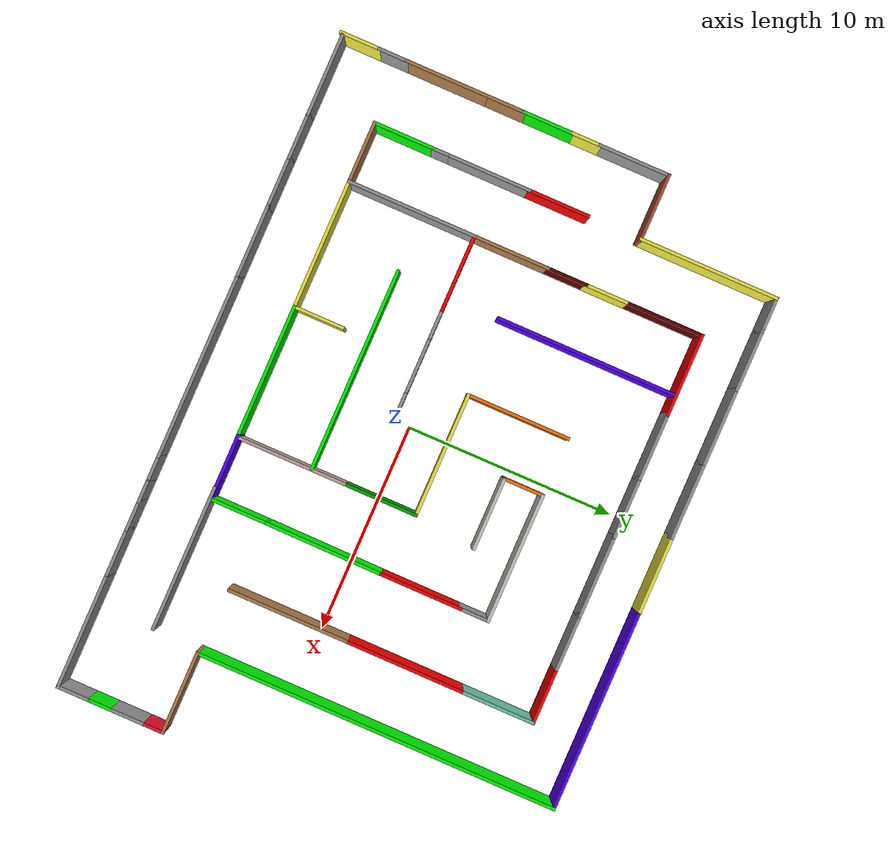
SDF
<?xml version='1.0'?>
<sdf version='1.6'>
  <model name='colourful_corridors'>
    <pose frame=''>0.960437 1.44085 0 0 -0 0</pose>
    <link name='Wall_10'>
      <collision name='Wall_10_Collision'>
        <geometry>
          <box>
            <size>6.25 0.15 2.5</size>
          </box>
        </geometry>
        <pose frame=''>0 0 1.25 0 -0 0</pose>
      </collision>
      <visual name='Wall_10_Visual'>
        <pose frame=''>0 0 1.25 0 -0 0</pose>
        <geometry>
          <box>
            <size>6.25 0.15 2.5</size>
          </box>
        </geometry>
        <material>
          <script>
            <uri>file://media/materials/scripts/gazebo.material</uri>
            <name>Gazebo/Grey</name>
          </script>
          <ambient>0 0 0 1</ambient>
        </material>
      </visual>
      <pose frame=''>-9.94493 -5.24748 0 0 -0 1.5708</pose>
    </link>
    <link name='Wall_100'>
      <collision name='Wall_100_Collision'>
        <geometry>
          <box>
            <size>1.5 0.15 2.5</size>
          </box>
        </geometry>
        <pose frame=''>0 0 1.25 0 -0 0</pose>
      </collision>
      <visual name='Wall_100_Visual'>
        <pose frame=''>0 0 1.25 0 -0 0</pose>
        <geometry>
          <box>
            <size>1.5 0.15 2.5</size>
          </box>
        </geometry>
        <material>
          <script>
            <uri>file://media/materials/scripts/gazebo.material</uri>
            <name>Gazebo/Grey</name>
          </script>
          <ambient>1 1 1 1</ambient>
        </material>
      </visual>
      <pose frame=''>5.53701 4.56402 0 0 0 -1.5708</pose>
    </link>
    <link name='Wall_101'>
      <collision name='Wall_101_Collision'>
        <geometry>
          <box>
            <size>4 0.15 2.5</size>
          </box>
        </geometry>
        <pose frame=''>0 0 1.25 0 -0 0</pose>
      </collision>
      <visual name='Wall_101_Visual'>
        <pose frame=''>0 0 1.25 0 -0 0</pose>
        <geometry>
          <box>
            <size>4 0.15 2.5</size>
          </box>
        </geometry>
        <material>
          <script>
            <uri>file://media/materials/scripts/gazebo.material</uri>
            <name>Gazebo/Grey</name>
          </script>
          <ambient>1 0 0 1</ambient>
        </material>
      </visual>
      <pose frame=''>5.53701 1.96402 0 0 0 -1.5708</pose>
    </link>
    <link name='Wall_102'>
      <collision name='Wall_102_Collision'>
        <geometry>
          <box>
            <size>5.75011 0.15 2.5</size>
          </box>
        </geometry>
        <pose frame=''>0 0 1.25 0 -0 0</pose>
      </collision>
      <visual name='Wall_102_Visual'>
        <pose frame=''>0 0 1.25 0 -0 0</pose>
        <geometry>
          <box>
            <size>5.75011 0.15 2.5</size>
          </box>
        </geometry>
        <material>
          <script>
            <uri>file://media/materials/scripts/gazebo.material</uri>
            <name>Gazebo/Grey</name>
          </script>
          <ambient>0 1 0 1</ambient>
        </material>
      </visual>
      <pose frame=''>5.51942 -2.76098 0 0 0 -1.57708</pose>
    </link>
    <link name='Wall_105'>
      <collision name='Wall_105_Collision'>
        <geometry>
          <box>
            <size>2.75 0.15 2.5</size>
          </box>
        </geometry>
        <pose frame=''>0 0 1.25 0 -0 0</pose>
      </collision>
      <visual name='Wall_105_Visual'>
        <pose frame=''>0 0 1.25 0 -0 0</pose>
        <geometry>
          <box>
            <size>2.75 0.15 2.5</size>
          </box>
        </geometry>
        <material>
          <script>
            <uri>file://media/materials/scripts/gazebo.material</uri>
            <name>Gazebo/Grey</name>
          </script>
          <ambient>0 1 0 1</ambient>
        </material>
      </visual>
      <pose frame=''>5.50183 -6.86098 0 0 0 -1.5708</pose>
    </link>
    <link name='Wall_107'>
      <collision name='Wall_107_Collision'>
        <geometry>
          <box>
            <size>3.5 0.15 2.5</size>
          </box>
        </geometry>
        <pose frame=''>0 0 1.25 0 -0 0</pose>
      </collision>
      <visual name='Wall_107_Visual'>
        <pose frame=''>0 0 1.25 0 -0 0</pose>
        <geometry>
          <box>
            <size>3.5 0.15 2.5</size>
          </box>
        </geometry>
        <material>
          <script>
            <uri>file://media/materials/scripts/gazebo.material</uri>
            <name>Gazebo/Grey</name>
          </script>
          <ambient>0.435294 0.796078 0.67451 1</ambient>
        </material>
      </visual>
      <pose frame=''>8.90507 7.22752 0 0 0 -1.5708</pose>
    </link>
    <link name='Wall_108'>
      <collision name='Wall_108_Collision'>
        <geometry>
          <box>
            <size>5.75 0.15 2.5</size>
          </box>
        </geometry>
        <pose frame=''>0 0 1.25 0 -0 0</pose>
      </collision>
      <visual name='Wall_108_Visual'>
        <pose frame=''>0 0 1.25 0 -0 0</pose>
        <geometry>
          <box>
            <size>5.75 0.15 2.5</size>
          </box>
        </geometry>
        <material>
          <script>
            <uri>file://media/materials/scripts/gazebo.material</uri>
            <name>Gazebo/Grey</name>
          </script>
          <ambient>1 0 0 1</ambient>
        </material>
      </visual>
      <pose frame=''>8.90507 2.75252 0 0 0 -1.5708</pose>
    </link>
    <link name='Wall_109'>
      <collision name='Wall_109_Collision'>
        <geometry>
          <box>
            <size>6 0.15 2.5</size>
          </box>
        </geometry>
        <pose frame=''>0 0 1.25 0 -0 0</pose>
      </collision>
      <visual name='Wall_109_Visual'>
        <pose frame=''>0 0 1.25 0 -0 0</pose>
        <geometry>
          <box>
            <size>6 0.15 2.5</size>
          </box>
        </geometry>
        <material>
          <script>
            <uri>file://media/materials/scripts/gazebo.material</uri>
            <name>Gazebo/Wood</name>
          </script>
          <ambient>1 1 1 1</ambient>
        </material>
      </visual>
      <pose frame=''>8.90507 -2.97248 0 0 0 -1.5708</pose>
    </link>
    <link name='Wall_111'>
      <collision name='Wall_111_Collision'>
        <geometry>
          <box>
            <size>3.75 0.15 2.5</size>
          </box>
        </geometry>
        <pose frame=''>0 0 1.25 0 -0 0</pose>
      </collision>
      <visual name='Wall_111_Visual'>
        <pose frame=''>0 0 1.25 0 -0 0</pose>
        <geometry>
          <box>
            <size>3.75 0.15 2.5</size>
          </box>
        </geometry>
        <material>
          <script>
            <uri>file://media/materials/scripts/gazebo.material</uri>
            <name>Gazebo/Grey</name>
          </script>
          <ambient>1 0 0 1</ambient>
        </material>
      </visual>
      <pose frame=''>-8.14493 -2.19748 0 0 -0 0</pose>
    </link>
    <link name='Wall_112'>
      <collision name='Wall_112_Collision'>
        <geometry>
          <box>
            <size>1.5 0.15 2.5</size>
          </box>
        </geometry>
        <pose frame=''>0 0 1.25 0 -0 0</pose>
      </collision>
      <visual name='Wall_112_Visual'>
        <pose frame=''>0 0 1.25 0 -0 0</pose>
        <geometry>
          <box>
            <size>1.5 0.15 2.5</size>
          </box>
        </geometry>
        <material>
          <script>
            <uri>file://media/materials/scripts/gazebo.material</uri>
            <name>Gazebo/Grey</name>
          </script>
          <ambient>1 1 1 1</ambient>
        </material>
      </visual>
      <pose frame=''>-5.66993 -2.19748 0 0 -0 0</pose>
    </link>
    <link name='Wall_113'>
      <collision name='Wall_113_Collision'>
        <geometry>
          <box>
            <size>2.75 0.15 2.5</size>
          </box>
        </geometry>
        <pose frame=''>0 0 1.25 0 -0 0</pose>
      </collision>
      <visual name='Wall_113_Visual'>
        <pose frame=''>0 0 1.25 0 -0 0</pose>
        <geometry>
          <box>
            <size>2.75 0.15 2.5</size>
          </box>
        </geometry>
        <material>
          <script>
            <uri>file://media/materials/scripts/gazebo.material</uri>
            <name>Gazebo/Grey</name>
          </script>
          <ambient>1 1 1 1</ambient>
        </material>
      </visual>
      <pose frame=''>-3.69493 -2.19748 0 0 -0 0</pose>
    </link>
    <link name='Wall_114'>
      <collision name='Wall_114_Collision'>
        <geometry>
          <box>
            <size>1.5 0.15 2.5</size>
          </box>
        </geometry>
        <pose frame=''>0 0 1.25 0 -0 0</pose>
      </collision>
      <visual name='Wall_114_Visual'>
        <pose frame=''>0 0 1.25 0 -0 0</pose>
        <geometry>
          <box>
            <size>1.5 0.15 2.5</size>
          </box>
        </geometry>
        <material>
          <script>
            <uri>file://media/materials/scripts/gazebo.material</uri>
            <name>Gazebo/Grey</name>
          </script>
          <ambient>1 1 1 1</ambient>
        </material>
      </visual>
      <pose frame=''>-1.71993 -2.19748 0 0 -0 0</pose>
    </link>
    <link name='Wall_116'>
      <collision name='Wall_116_Collision'>
        <geometry>
          <box>
            <size>4 0.15 2.5</size>
          </box>
        </geometry>
        <pose frame=''>0 0 1.25 0 -0 0</pose>
      </collision>
      <visual name='Wall_116_Visual'>
        <pose frame=''>0 0 1.25 0 -0 0</pose>
        <geometry>
          <box>
            <size>4 0.15 2.5</size>
          </box>
        </geometry>
        <material>
          <script>
            <uri>file://media/materials/scripts/gazebo.material</uri>
            <name>Gazebo/Grey</name>
          </script>
          <ambient>1 0 0 1</ambient>
        </material>
      </visual>
      <pose frame=''>-8.01993 8.90252 0 0 -0 0</pose>
    </link>
    <link name='Wall_117'>
      <collision name='Wall_117_Collision'>
        <geometry>
          <box>
            <size>3.25 0.15 2.5</size>
          </box>
        </geometry>
        <pose frame=''>0 0 1.25 0 -0 0</pose>
      </collision>
      <visual name='Wall_117_Visual'>
        <pose frame=''>0 0 1.25 0 -0 0</pose>
        <geometry>
          <box>
            <size>3.25 0.15 2.5</size>
          </box>
        </geometry>
        <material>
          <script>
            <uri>file://media/materials/scripts/gazebo.material</uri>
            <name>Gazebo/Grey</name>
          </script>
          <ambient>1 1 1 1</ambient>
        </material>
      </visual>
      <pose frame=''>-4.54493 8.90252 0 0 -0 0</pose>
    </link>
    <link name='Wall_118'>
      <collision name='Wall_118_Collision'>
        <geometry>
          <box>
            <size>3 0.15 2.5</size>
          </box>
        </geometry>
        <pose frame=''>0 0 1.25 0 -0 0</pose>
      </collision>
      <visual name='Wall_118_Visual'>
        <pose frame=''>0 0 1.25 0 -0 0</pose>
        <geometry>
          <box>
            <size>3 0.15 2.5</size>
          </box>
        </geometry>
        <material>
          <script>
            <uri>file://media/materials/scripts/gazebo.material</uri>
            <name>Gazebo/Grey</name>
          </script>
          <ambient>1 1 1 1</ambient>
        </material>
      </visual>
      <pose frame=''>-1.56993 8.90252 0 0 -0 0</pose>
    </link>
    <link name='Wall_119'>
      <collision name='Wall_119_Collision'>
        <geometry>
          <box>
            <size>4 0.15 2.5</size>
          </box>
        </geometry>
        <pose frame=''>0 0 1.25 0 -0 0</pose>
      </collision>
      <visual name='Wall_119_Visual'>
        <pose frame=''>0 0 1.25 0 -0 0</pose>
        <geometry>
          <box>
            <size>4 0.15 2.5</size>
          </box>
        </geometry>
        <material>
          <script>
            <uri>file://media/materials/scripts/gazebo.material</uri>
            <name>Gazebo/Grey</name>
          </script>
          <ambient>1 1 1 1</ambient>
        </material>
      </visual>
      <pose frame=''>1.78007 8.90252 0 0 -0 0</pose>
    </link>
    <link name='Wall_120'>
      <collision name='Wall_120_Collision'>
        <geometry>
          <box>
            <size>2.75 0.15 2.5</size>
          </box>
        </geometry>
        <pose frame=''>0 0 1.25 0 -0 0</pose>
      </collision>
      <visual name='Wall_120_Visual'>
        <pose frame=''>0 0 1.25 0 -0 0</pose>
        <geometry>
          <box>
            <size>2.75 0.15 2.5</size>
          </box>
        </geometry>
        <material>
          <script>
            <uri>file://media/materials/scripts/gazebo.material</uri>
            <name>Gazebo/Grey</name>
          </script>
          <ambient>1 1 1 1</ambient>
        </material>
      </visual>
      <pose frame=''>5.00507 8.90252 0 0 -0 0</pose>
    </link>
    <link name='Wall_121'>
      <collision name='Wall_121_Collision'>
        <geometry>
          <box>
            <size>2.75 0.15 2.5</size>
          </box>
        </geometry>
        <pose frame=''>0 0 1.25 0 -0 0</pose>
      </collision>
      <visual name='Wall_121_Visual'>
        <pose frame=''>0 0 1.25 0 -0 0</pose>
        <geometry>
          <box>
            <size>2.75 0.15 2.5</size>
          </box>
        </geometry>
        <material>
          <script>
            <uri>file://media/materials/scripts/gazebo.material</uri>
            <name>Gazebo/Grey</name>
          </script>
          <ambient>1 0 0 1</ambient>
        </material>
      </visual>
      <pose frame=''>7.60507 8.90252 0 0 -0 0</pose>
    </link>
    <link name='Wall_123'>
      <collision name='Wall_123_Collision'>
        <geometry>
          <box>
            <size>3.75 0.15 2.5</size>
          </box>
        </geometry>
        <pose frame=''>0 0 1.25 0 -0 0</pose>
      </collision>
      <visual name='Wall_123_Visual'>
        <pose frame=''>0 0 1.25 0 -0 0</pose>
        <geometry>
          <box>
            <size>3.75 0.15 2.5</size>
          </box>
        </geometry>
        <material>
          <script>
            <uri>file://media/materials/scripts/gazebo.material</uri>
            <name>Gazebo/Wood</name>
          </script>
          <ambient>1 1 1 1</ambient>
        </material>
      </visual>
      <pose frame=''>-9.94493 -0.39748 0 0 -0 1.5708</pose>
    </link>
    <link name='Wall_124'>
      <collision name='Wall_124_Collision'>
        <geometry>
          <box>
            <size>2 0.15 2.5</size>
          </box>
        </geometry>
        <pose frame=''>0 0 1.25 0 -0 0</pose>
      </collision>
      <visual name='Wall_124_Visual'>
        <pose frame=''>0 0 1.25 0 -0 0</pose>
        <geometry>
          <box>
            <size>2 0.15 2.5</size>
          </box>
        </geometry>
        <material>
          <script>
            <uri>file://media/materials/scripts/gazebo.material</uri>
            <name>Gazebo/Grey</name>
          </script>
          <ambient>0.333333 0 0 1</ambient>
        </material>
      </visual>
      <pose frame=''>-9.94493 2.32752 0 0 -0 1.5708</pose>
    </link>
    <link name='Wall_125'>
      <collision name='Wall_125_Collision'>
        <geometry>
          <box>
            <size>2.25 0.15 2.5</size>
          </box>
        </geometry>
        <pose frame=''>0 0 1.25 0 -0 0</pose>
      </collision>
      <visual name='Wall_125_Visual'>
        <pose frame=''>0 0 1.25 0 -0 0</pose>
        <geometry>
          <box>
            <size>2.25 0.15 2.5</size>
          </box>
        </geometry>
        <material>
          <script>
            <uri>file://media/materials/scripts/gazebo.material</uri>
            <name>Gazebo/Grey</name>
          </script>
          <ambient>0.960784 0.937255 0.25098 1</ambient>
        </material>
      </visual>
      <pose frame=''>-9.94493 4.30252 0 0 -0 1.5708</pose>
    </link>
    <link name='Wall_126'>
      <collision name='Wall_126_Collision'>
        <geometry>
          <box>
            <size>3.7 0.15 2.5</size>
          </box>
        </geometry>
        <pose frame=''>0 0 1.25 0 -0 0</pose>
      </collision>
      <visual name='Wall_126_Visual'>
        <pose frame=''>0 0 1.25 0 -0 0</pose>
        <geometry>
          <box>
            <size>3.7 0.15 2.5</size>
          </box>
        </geometry>
        <material>
          <script>
            <uri>file://media/materials/scripts/gazebo.material</uri>
            <name>Gazebo/Grey</name>
          </script>
          <ambient>0.333333 0 0 1</ambient>
        </material>
      </visual>
      <pose frame=''>-9.94493 7.12752 0 0 -0 1.5708</pose>
    </link>
    <link name='Wall_136'>
      <collision name='Wall_136_Collision'>
        <geometry>
          <box>
            <size>7 0.15 2.5</size>
          </box>
        </geometry>
        <pose frame=''>0 0 1.25 0 -0 0</pose>
      </collision>
      <visual name='Wall_136_Visual'>
        <pose frame=''>0 0 1.25 0 -0 0</pose>
        <geometry>
          <box>
            <size>7 0.15 2.5</size>
          </box>
        </geometry>
        <material>
          <script>
            <uri>file://media/materials/scripts/gazebo.material</uri>
            <name>Gazebo/Grey</name>
          </script>
          <ambient>0 0 0 1</ambient>
        </material>
      </visual>
      <pose frame=''>8.40702 -8.3203 0 0 -0 0</pose>
    </link>
    <link name='Wall_19'>
      <collision name='Wall_19_Collision'>
        <geometry>
          <box>
            <size>3.5 0.15 2.5</size>
          </box>
        </geometry>
        <pose frame=''>0 0 1.25 0 -0 0</pose>
      </collision>
      <visual name='Wall_19_Visual'>
        <pose frame=''>0 0 1.25 0 -0 0</pose>
        <geometry>
          <box>
            <size>3.5 0.15 2.5</size>
          </box>
        </geometry>
        <material>
          <script>
            <uri>file://media/materials/scripts/gazebo.material</uri>
            <name>Gazebo/Grey</name>
          </script>
          <ambient>0 0.666667 0 1</ambient>
        </material>
      </visual>
      <pose frame=''>2.50507 -1.27248 0 0 -0 1.5708</pose>
    </link>
    <link name='Wall_20'>
      <collision name='Wall_20_Collision'>
        <geometry>
          <box>
            <size>6 0.15 2.5</size>
          </box>
        </geometry>
        <pose frame=''>0 0 1.25 0 -0 0</pose>
      </collision>
      <visual name='Wall_20_Visual'>
        <pose frame=''>0 0 1.25 0 -0 0</pose>
        <geometry>
          <box>
            <size>6 0.15 2.5</size>
          </box>
        </geometry>
        <material>
          <script>
            <uri>file://media/materials/scripts/gazebo.material</uri>
            <name>Gazebo/Grey</name>
          </script>
          <ambient>0.960784 0.937255 0.25098 1</ambient>
        </material>
      </visual>
      <pose frame=''>-0.419931 0.40252 0 0 -0 3.14159</pose>
    </link>
    <link name='Wall_21'>
      <collision name='Wall_21_Collision'>
        <geometry>
          <box>
            <size>5 0.15 2.5</size>
          </box>
        </geometry>
        <pose frame=''>0 0 1.25 0 -0 0</pose>
      </collision>
      <visual name='Wall_21_Visual'>
        <pose frame=''>0 0 1.25 0 -0 0</pose>
        <geometry>
          <box>
            <size>5 0.15 2.5</size>
          </box>
        </geometry>
        <material>
          <script>
            <uri>file://media/materials/scripts/gazebo.material</uri>
            <name>Gazebo/Grey</name>
          </script>
          <ambient>0.996078 0.47451 0.0196078 1</ambient>
        </material>
      </visual>
      <pose frame=''>-3.34493 2.82752 0 0 -0 1.5708</pose>
    </link>
    <link name='Wall_23'>
      <collision name='Wall_23_Collision'>
        <geometry>
          <box>
            <size>9.75 0.15 2.5</size>
          </box>
        </geometry>
        <pose frame=''>0 0 1.25 0 -0 0</pose>
      </collision>
      <visual name='Wall_23_Visual'>
        <pose frame=''>0 0 1.25 0 -0 0</pose>
        <geometry>
          <box>
            <size>9.75 0.15 2.5</size>
          </box>
        </geometry>
        <material>
          <script>
            <uri>file://media/materials/scripts/gazebo.material</uri>
            <name>Gazebo/Grey</name>
          </script>
          <ambient>0 1 0 1</ambient>
        </material>
      </visual>
      <pose frame=''>-2.34964 -4.69376 0 0 -0 3.14159</pose>
    </link>
    <link name='Wall_25'>
      <collision name='Wall_25_Collision'>
        <geometry>
          <box>
            <size>8.75 0.15 2.5</size>
          </box>
        </geometry>
        <pose frame=''>0 0 1.25 0 -0 0</pose>
      </collision>
      <visual name='Wall_25_Visual'>
        <pose frame=''>0 0 1.25 0 -0 0</pose>
        <geometry>
          <box>
            <size>8.75 0.15 2.5</size>
          </box>
        </geometry>
        <material>
          <script>
            <uri>file://media/materials/scripts/gazebo.material</uri>
            <name>Gazebo/Grey</name>
          </script>
          <ambient>0.333333 0 1 1</ambient>
        </material>
      </visual>
      <pose frame=''>-7.02348 4.57178 0 0 0 -1.5708</pose>
    </link>
    <link name='Wall_29'>
      <collision name='Wall_29_Collision'>
        <geometry>
          <box>
            <size>6.25 0.15 2.5</size>
          </box>
        </geometry>
        <pose frame=''>0 0 1.25 0 -0 0</pose>
      </collision>
      <visual name='Wall_29_Visual'>
        <pose frame=''>0 0 1.25 0 -0 0</pose>
        <geometry>
          <box>
            <size>6.25 0.15 2.5</size>
          </box>
        </geometry>
        <material>
          <script>
            <uri>file://media/materials/scripts/gazebo.material</uri>
            <name>Gazebo/CeilingTiled</name>
          </script>
          <ambient>0.996078 0.47451 0.0196078 1</ambient>
        </material>
      </visual>
      <pose frame=''>2.48701 5.23902 0 0 -0 0</pose>
    </link>
    <link name='Wall_31'>
      <collision name='Wall_31_Collision'>
        <geometry>
          <box>
            <size>3.14446 0.15 2.5</size>
          </box>
        </geometry>
        <pose frame=''>0 0 1.25 0 -0 0</pose>
      </collision>
      <visual name='Wall_31_Visual'>
        <pose frame=''>0 0 1.25 0 -0 0</pose>
        <geometry>
          <box>
            <size>3.14446 0.15 2.5</size>
          </box>
        </geometry>
        <material>
          <script>
            <uri>file://media/materials/scripts/gazebo.material</uri>
            <name>Gazebo/Grey</name>
          </script>
          <ambient>0.333333 0 1 1</ambient>
        </material>
      </visual>
      <pose frame=''>3.93424 -8.29062 0 0 -0 3.14159</pose>
    </link>
    <link name='Wall_37'>
      <collision name='Wall_37_Collision'>
        <geometry>
          <box>
            <size>3.5 0.15 2.5</size>
          </box>
        </geometry>
        <pose frame=''>0 0 1.25 0 -0 0</pose>
      </collision>
      <visual name='Wall_37_Visual'>
        <pose frame=''>0 0 1.25 0 -0 0</pose>
        <geometry>
          <box>
            <size>3.5 0.15 2.5</size>
          </box>
        </geometry>
        <material>
          <script>
            <uri>file://media/materials/scripts/gazebo.material</uri>
            <name>Gazebo/CeilingTiled</name>
          </script>
          <ambient>1 1 1 1</ambient>
        </material>
      </visual>
      <pose frame=''>1.16107 3.36785 0 0 -0 0</pose>
    </link>
    <link name='Wall_4'>
      <collision name='Wall_4_Collision'>
        <geometry>
          <box>
            <size>5.5 0.15 2.5</size>
          </box>
        </geometry>
        <pose frame=''>0 0 1.25 0 -0 0</pose>
      </collision>
      <visual name='Wall_4_Visual'>
        <pose frame=''>0 0 1.25 0 -0 0</pose>
        <geometry>
          <box>
            <size>5.5 0.15 2.5</size>
          </box>
        </geometry>
        <material>
          <script>
            <uri>file://media/materials/scripts/gazebo.material</uri>
            <name>Gazebo/Grey</name>
          </script>
          <ambient>0.760784 0.662745 0.627451 1</ambient>
        </material>
      </visual>
      <pose frame=''>2.50507 -5.62248 0 0 0 -1.5708</pose>
    </link>
    <link name='Wall_43'>
      <collision name='Wall_43_Collision'>
        <geometry>
          <box>
            <size>2 0.15 2.5</size>
          </box>
        </geometry>
        <pose frame=''>0 0 1.25 0 -0 0</pose>
      </collision>
      <visual name='Wall_43_Visual'>
        <pose frame=''>0 0 1.25 0 -0 0</pose>
        <geometry>
          <box>
            <size>2 0.15 2.5</size>
          </box>
        </geometry>
        <material>
          <script>
            <uri>file://media/materials/scripts/gazebo.material</uri>
            <name>Gazebo/Grey</name>
          </script>
          <ambient>0.996078 0.47451 0.0196078 1</ambient>
        </material>
      </visual>
      <pose frame=''>-0.562989 4.31402 0 0 0 -1.5708</pose>
    </link>
    <link name='Wall_48'>
      <collision name='Wall_48_Collision'>
        <geometry>
          <box>
            <size>4 0.15 2.5</size>
          </box>
        </geometry>
        <pose frame=''>0 0 1.25 0 -0 0</pose>
      </collision>
      <visual name='Wall_48_Visual'>
        <pose frame=''>0 0 1.25 0 -0 0</pose>
        <geometry>
          <box>
            <size>4 0.15 2.5</size>
          </box>
        </geometry>
        <material>
          <script>
            <uri>file://media/materials/scripts/gazebo.material</uri>
            <name>Gazebo/Wood</name>
          </script>
          <ambient>1 1 1 1</ambient>
        </material>
      </visual>
      <pose frame=''>13.975 -6.075 0 0 -0 3.14159</pose>
    </link>
    <link name='Wall_49'>
      <collision name='Wall_49_Collision'>
        <geometry>
          <box>
            <size>17.5 0.15 2.5</size>
          </box>
        </geometry>
        <pose frame=''>0 0 1.25 0 -0 0</pose>
      </collision>
      <visual name='Wall_49_Visual'>
        <pose frame=''>0 0 1.25 0 -0 0</pose>
        <geometry>
          <box>
            <size>17.5 0.15 2.5</size>
          </box>
        </geometry>
        <material>
          <script>
            <uri>file://media/materials/scripts/gazebo.material</uri>
            <name>Gazebo/Grey</name>
          </script>
          <ambient>0 1 0 1</ambient>
        </material>
      </visual>
      <pose frame=''>12.05 2.6 0 0 -0 1.5708</pose>
    </link>
    <link name='Wall_51'>
      <collision name='Wall_51_Collision'>
        <geometry>
          <box>
            <size>6.75 0.15 2.5</size>
          </box>
        </geometry>
        <pose frame=''>0 0 1.25 0 -0 0</pose>
      </collision>
      <visual name='Wall_51_Visual'>
        <pose frame=''>0 0 1.25 0 -0 0</pose>
        <geometry>
          <box>
            <size>6.75 0.15 2.5</size>
          </box>
        </geometry>
        <material>
          <script>
            <uri>file://media/materials/scripts/gazebo.material</uri>
            <name>Gazebo/Grey</name>
          </script>
          <ambient>0.960784 0.937255 0.25098 1</ambient>
        </material>
      </visual>
      <pose frame=''>-12.8 7.975 0 0 0 -1.5708</pose>
    </link>
    <link name='Wall_52'>
      <collision name='Wall_52_Collision'>
        <geometry>
          <box>
            <size>3.25 0.15 2.5</size>
          </box>
        </geometry>
        <pose frame=''>0 0 1.25 0 -0 0</pose>
      </collision>
      <visual name='Wall_52_Visual'>
        <pose frame=''>0 0 1.25 0 -0 0</pose>
        <geometry>
          <box>
            <size>3.25 0.15 2.5</size>
          </box>
        </geometry>
        <material>
          <script>
            <uri>file://media/materials/scripts/gazebo.material</uri>
            <name>Gazebo/Bricks</name>
          </script>
          <ambient>1 0 0 1</ambient>
        </material>
      </visual>
      <pose frame=''>-14.35 4.675 0 0 -0 3.14159</pose>
    </link>
    <link name='Wall_56'>
      <collision name='Wall_56_Collision'>
        <geometry>
          <box>
            <size>4 0.15 2.5</size>
          </box>
        </geometry>
        <pose frame=''>0 0 1.25 0 -0 0</pose>
      </collision>
      <visual name='Wall_56_Visual'>
        <pose frame=''>0 0 1.25 0 -0 0</pose>
        <geometry>
          <box>
            <size>4 0.15 2.5</size>
          </box>
        </geometry>
        <material>
          <script>
            <uri>file://media/materials/scripts/gazebo.material</uri>
            <name>Gazebo/Grey</name>
          </script>
          <ambient>1 1 1 1</ambient>
        </material>
      </visual>
      <pose frame=''>-13.875 -11.175 0 0 -0 3.14159</pose>
    </link>
    <link name='Wall_6'>
      <collision name='Wall_6_Collision'>
        <geometry>
          <box>
            <size>6.5 0.15 2.5</size>
          </box>
        </geometry>
        <pose frame=''>0 0 1.25 0 -0 0</pose>
      </collision>
      <visual name='Wall_6_Visual'>
        <pose frame=''>0 0 1.25 0 -0 0</pose>
        <geometry>
          <box>
            <size>6.5 0.15 2.5</size>
          </box>
        </geometry>
        <material>
          <script>
            <uri>file://media/materials/scripts/gazebo.material</uri>
            <name>Gazebo/Grey</name>
          </script>
          <ambient>0 1 0 1</ambient>
        </material>
      </visual>
      <pose frame=''>-0.669931 -8.29748 0 0 -0 3.14159</pose>
    </link>
    <link name='Wall_60'>
      <collision name='Wall_60_Collision'>
        <geometry>
          <box>
            <size>3 0.15 2.5</size>
          </box>
        </geometry>
        <pose frame=''>0 0 1.25 0 -0 0</pose>
      </collision>
      <visual name='Wall_60_Visual'>
        <pose frame=''>0 0 1.25 0 -0 0</pose>
        <geometry>
          <box>
            <size>3 0.15 2.5</size>
          </box>
        </geometry>
        <material>
          <script>
            <uri>file://media/materials/scripts/gazebo.material</uri>
            <name>Gazebo/Wood</name>
          </script>
          <ambient>1 1 1 1</ambient>
        </material>
      </visual>
      <pose frame=''>-11.3699 -8.29748 0 0 -0 3.14159</pose>
    </link>
    <link name='Wall_63'>
      <collision name='Wall_63_Collision'>
        <geometry>
          <box>
            <size>2.25 0.15 2.5</size>
          </box>
        </geometry>
        <pose frame=''>0 0 1.25 0 -0 0</pose>
      </collision>
      <visual name='Wall_63_Visual'>
        <pose frame=''>0 0 1.25 0 -0 0</pose>
        <geometry>
          <box>
            <size>2.25 0.15 2.5</size>
          </box>
        </geometry>
        <material>
          <script>
            <uri>file://media/materials/scripts/gazebo.material</uri>
            <name>Gazebo/Grey</name>
          </script>
          <ambient>1 1 1 1</ambient>
        </material>
      </visual>
      <pose frame=''>-10.9 -11.175 0 0 -0 0</pose>
    </link>
    <link name='Wall_64'>
      <collision name='Wall_64_Collision'>
        <geometry>
          <box>
            <size>2.5 0.15 2.5</size>
          </box>
        </geometry>
        <pose frame=''>0 0 1.25 0 -0 0</pose>
      </collision>
      <visual name='Wall_64_Visual'>
        <pose frame=''>0 0 1.25 0 -0 0</pose>
        <geometry>
          <box>
            <size>2.5 0.15 2.5</size>
          </box>
        </geometry>
        <material>
          <script>
            <uri>file://media/materials/scripts/gazebo.material</uri>
            <name>Gazebo/Grey</name>
          </script>
          <ambient>1 1 1 1</ambient>
        </material>
      </visual>
      <pose frame=''>-8.675 -11.175 0 0 -0 0</pose>
    </link>
    <link name='Wall_65'>
      <collision name='Wall_65_Collision'>
        <geometry>
          <box>
            <size>3.5 0.15 2.5</size>
          </box>
        </geometry>
        <pose frame=''>0 0 1.25 0 -0 0</pose>
      </collision>
      <visual name='Wall_65_Visual'>
        <pose frame=''>0 0 1.25 0 -0 0</pose>
        <geometry>
          <box>
            <size>3.5 0.15 2.5</size>
          </box>
        </geometry>
        <material>
          <script>
            <uri>file://media/materials/scripts/gazebo.material</uri>
            <name>Gazebo/Grey</name>
          </script>
          <ambient>1 1 1 1</ambient>
        </material>
      </visual>
      <pose frame=''>-5.825 -11.175 0 0 -0 0</pose>
    </link>
    <link name='Wall_66'>
      <collision name='Wall_66_Collision'>
        <geometry>
          <box>
            <size>9 0.15 2.5</size>
          </box>
        </geometry>
        <pose frame=''>0 0 1.25 0 -0 0</pose>
      </collision>
      <visual name='Wall_66_Visual'>
        <pose frame=''>0 0 1.25 0 -0 0</pose>
        <geometry>
          <box>
            <size>9 0.15 2.5</size>
          </box>
        </geometry>
        <material>
          <script>
            <uri>file://media/materials/scripts/gazebo.material</uri>
            <name>Gazebo/Grey</name>
          </script>
          <ambient>1 1 1 1</ambient>
        </material>
      </visual>
      <pose frame=''>0.274999 -11.175 0 0 -0 0</pose>
    </link>
    <link name='Wall_67'>
      <collision name='Wall_67_Collision'>
        <geometry>
          <box>
            <size>1.25 0.15 2.5</size>
          </box>
        </geometry>
        <pose frame=''>0 0 1.25 0 -0 0</pose>
      </collision>
      <visual name='Wall_67_Visual'>
        <pose frame=''>0 0 1.25 0 -0 0</pose>
        <geometry>
          <box>
            <size>1.25 0.15 2.5</size>
          </box>
        </geometry>
        <material>
          <script>
            <uri>file://media/materials/scripts/gazebo.material</uri>
            <name>Gazebo/Grey</name>
          </script>
          <ambient>1 1 1 1</ambient>
        </material>
      </visual>
      <pose frame=''>5.25 -11.175 0 0 -0 0</pose>
    </link>
    <link name='Wall_68'>
      <collision name='Wall_68_Collision'>
        <geometry>
          <box>
            <size>1.25 0.15 2.5</size>
          </box>
        </geometry>
        <pose frame=''>0 0 1.25 0 -0 0</pose>
      </collision>
      <visual name='Wall_68_Visual'>
        <pose frame=''>0 0 1.25 0 -0 0</pose>
        <geometry>
          <box>
            <size>1.25 0.15 2.5</size>
          </box>
        </geometry>
        <material>
          <script>
            <uri>file://media/materials/scripts/gazebo.material</uri>
            <name>Gazebo/Grey</name>
          </script>
          <ambient>1 1 1 1</ambient>
        </material>
      </visual>
      <pose frame=''>6.35 -11.175 0 0 -0 0</pose>
    </link>
    <link name='Wall_69'>
      <collision name='Wall_69_Collision'>
        <geometry>
          <box>
            <size>1.5 0.15 2.5</size>
          </box>
        </geometry>
        <pose frame=''>0 0 1.25 0 -0 0</pose>
      </collision>
      <visual name='Wall_69_Visual'>
        <pose frame=''>0 0 1.25 0 -0 0</pose>
        <geometry>
          <box>
            <size>1.5 0.15 2.5</size>
          </box>
        </geometry>
        <material>
          <script>
            <uri>file://media/materials/scripts/gazebo.material</uri>
            <name>Gazebo/Grey</name>
          </script>
          <ambient>1 1 1 1</ambient>
        </material>
      </visual>
      <pose frame=''>7.575 -11.175 0 0 -0 0</pose>
    </link>
    <link name='Wall_7'>
      <collision name='Wall_7_Collision'>
        <geometry>
          <box>
            <size>2.5 0.15 2.5</size>
          </box>
        </geometry>
        <pose frame=''>0 0 1.25 0 -0 0</pose>
      </collision>
      <visual name='Wall_7_Visual'>
        <pose frame=''>0 0 1.25 0 -0 0</pose>
        <geometry>
          <box>
            <size>2.5 0.15 2.5</size>
          </box>
        </geometry>
        <material>
          <script>
            <uri>file://media/materials/scripts/gazebo.material</uri>
            <name>Gazebo/Grey</name>
          </script>
          <ambient>0.960784 0.937255 0.25098 1</ambient>
        </material>
      </visual>
      <pose frame=''>-3.84493 -7.12248 0 0 -0 1.5708</pose>
    </link>
    <link name='Wall_70'>
      <collision name='Wall_70_Collision'>
        <geometry>
          <box>
            <size>2.5 0.15 2.5</size>
          </box>
        </geometry>
        <pose frame=''>0 0 1.25 0 -0 0</pose>
      </collision>
      <visual name='Wall_70_Visual'>
        <pose frame=''>0 0 1.25 0 -0 0</pose>
        <geometry>
          <box>
            <size>2.5 0.15 2.5</size>
          </box>
        </geometry>
        <material>
          <script>
            <uri>file://media/materials/scripts/gazebo.material</uri>
            <name>Gazebo/Grey</name>
          </script>
          <ambient>1 1 1 1</ambient>
        </material>
      </visual>
      <pose frame=''>9.425 -11.175 0 0 -0 0</pose>
    </link>
    <link name='Wall_71'>
      <collision name='Wall_71_Collision'>
        <geometry>
          <box>
            <size>5.45 0.15 2.5</size>
          </box>
        </geometry>
        <pose frame=''>0 0 1.25 0 -0 0</pose>
      </collision>
      <visual name='Wall_71_Visual'>
        <pose frame=''>0 0 1.25 0 -0 0</pose>
        <geometry>
          <box>
            <size>5.45 0.15 2.5</size>
          </box>
        </geometry>
        <material>
          <script>
            <uri>file://media/materials/scripts/gazebo.material</uri>
            <name>Gazebo/Grey</name>
          </script>
          <ambient>1 1 1 1</ambient>
        </material>
      </visual>
      <pose frame=''>13.25 -11.175 0 0 -0 0</pose>
    </link>
    <link name='Wall_73'>
      <collision name='Wall_73_Collision'>
        <geometry>
          <box>
            <size>1 0.15 2.5</size>
          </box>
        </geometry>
        <pose frame=''>0 0 1.25 0 -0 0</pose>
      </collision>
      <visual name='Wall_73_Visual'>
        <pose frame=''>0 0 1.25 0 -0 0</pose>
        <geometry>
          <box>
            <size>1 0.15 2.5</size>
          </box>
        </geometry>
        <material>
          <script>
            <uri>file://media/materials/scripts/gazebo.material</uri>
            <name>Gazebo/Grey</name>
          </script>
          <ambient>0.960784 0.054902 0.192157 1</ambient>
        </material>
      </visual>
      <pose frame=''>15.9 -6.5 0 0 0 -1.5708</pose>
    </link>
    <link name='Wall_74'>
      <collision name='Wall_74_Collision'>
        <geometry>
          <box>
            <size>1.75 0.15 2.5</size>
          </box>
        </geometry>
        <pose frame=''>0 0 1.25 0 -0 0</pose>
      </collision>
      <visual name='Wall_74_Visual'>
        <pose frame=''>0 0 1.25 0 -0 0</pose>
        <geometry>
          <box>
            <size>1.75 0.15 2.5</size>
          </box>
        </geometry>
        <material>
          <script>
            <uri>file://media/materials/scripts/gazebo.material</uri>
            <name>Gazebo/Grey</name>
          </script>
          <ambient>0 0 0 1</ambient>
        </material>
      </visual>
      <pose frame=''>15.9 -7.725 0 0 0 -1.5708</pose>
    </link>
    <link name='Wall_77'>
      <collision name='Wall_77_Collision'>
        <geometry>
          <box>
            <size>1.25 0.15 2.5</size>
          </box>
        </geometry>
        <pose frame=''>0 0 1.25 0 -0 0</pose>
      </collision>
      <visual name='Wall_77_Visual'>
        <pose frame=''>0 0 1.25 0 -0 0</pose>
        <geometry>
          <box>
            <size>1.25 0.15 2.5</size>
          </box>
        </geometry>
        <material>
          <script>
            <uri>file://media/materials/scripts/gazebo.material</uri>
            <name>Gazebo/Grey</name>
          </script>
          <ambient>0 1 0 1</ambient>
        </material>
      </visual>
      <pose frame=''>15.9 -9.075 0 0 0 -1.5708</pose>
    </link>
    <link name='Wall_78'>
      <collision name='Wall_78_Collision'>
        <geometry>
          <box>
            <size>1.7 0.15 2.5</size>
          </box>
        </geometry>
        <pose frame=''>0 0 1.25 0 -0 0</pose>
      </collision>
      <visual name='Wall_78_Visual'>
        <pose frame=''>0 0 1.25 0 -0 0</pose>
        <geometry>
          <box>
            <size>1.7 0.15 2.5</size>
          </box>
        </geometry>
        <material>
          <script>
            <uri>file://media/materials/scripts/gazebo.material</uri>
            <name>Gazebo/Grey</name>
          </script>
          <ambient>0 0 0 1</ambient>
        </material>
      </visual>
      <pose frame=''>15.9 -10.4 0 0 0 -1.5708</pose>
    </link>
    <link name='Wall_80'>
      <collision name='Wall_80_Collision'>
        <geometry>
          <box>
            <size>3 0.15 2.5</size>
          </box>
        </geometry>
        <pose frame=''>0 0 1.25 0 -0 0</pose>
      </collision>
      <visual name='Wall_80_Visual'>
        <pose frame=''>0 0 1.25 0 -0 0</pose>
        <geometry>
          <box>
            <size>3 0.15 2.5</size>
          </box>
        </geometry>
        <material>
          <script>
            <uri>file://media/materials/scripts/gazebo.material</uri>
            <name>Gazebo/Grey</name>
          </script>
          <ambient>0 1 0 1</ambient>
        </material>
      </visual>
      <pose frame=''>-12.7949 -6.87248 0 0 -0 1.5708</pose>
    </link>
    <link name='Wall_81'>
      <collision name='Wall_81_Collision'>
        <geometry>
          <box>
            <size>1 0.15 2.5</size>
          </box>
        </geometry>
        <pose frame=''>0 0 1.25 0 -0 0</pose>
      </collision>
      <visual name='Wall_81_Visual'>
        <pose frame=''>0 0 1.25 0 -0 0</pose>
        <geometry>
          <box>
            <size>1 0.15 2.5</size>
          </box>
        </geometry>
        <material>
          <script>
            <uri>file://media/materials/scripts/gazebo.material</uri>
            <name>Gazebo/Grey</name>
          </script>
          <ambient>0 0 0 1</ambient>
        </material>
      </visual>
      <pose frame=''>-12.7949 -5.02248 0 0 -0 1.5708</pose>
    </link>
    <link name='Wall_82'>
      <collision name='Wall_82_Collision'>
        <geometry>
          <box>
            <size>4 0.15 2.5</size>
          </box>
        </geometry>
        <pose frame=''>0 0 1.25 0 -0 0</pose>
      </collision>
      <visual name='Wall_82_Visual'>
        <pose frame=''>0 0 1.25 0 -0 0</pose>
        <geometry>
          <box>
            <size>4 0.15 2.5</size>
          </box>
        </geometry>
        <material>
          <script>
            <uri>file://media/materials/scripts/gazebo.material</uri>
            <name>Gazebo/Grey</name>
          </script>
          <ambient>0 0 0 1</ambient>
        </material>
      </visual>
      <pose frame=''>-12.7949 -2.67248 0 0 -0 1.5708</pose>
    </link>
    <link name='Wall_83'>
      <collision name='Wall_83_Collision'>
        <geometry>
          <box>
            <size>3 0.15 2.5</size>
          </box>
        </geometry>
        <pose frame=''>0 0 1.25 0 -0 0</pose>
      </collision>
      <visual name='Wall_83_Visual'>
        <pose frame=''>0 0 1.25 0 -0 0</pose>
        <geometry>
          <box>
            <size>3 0.15 2.5</size>
          </box>
        </geometry>
        <material>
          <script>
            <uri>file://media/materials/scripts/gazebo.material</uri>
            <name>Gazebo/Grey</name>
          </script>
          <ambient>1 0 0 1</ambient>
        </material>
      </visual>
      <pose frame=''>-12.7949 0.67752 0 0 -0 1.5708</pose>
    </link>
    <link name='Wall_85'>
      <collision name='Wall_85_Collision'>
        <geometry>
          <box>
            <size>3.5 0.15 2.5</size>
          </box>
        </geometry>
        <pose frame=''>0 0 1.25 0 -0 0</pose>
      </collision>
      <visual name='Wall_85_Visual'>
        <pose frame=''>0 0 1.25 0 -0 0</pose>
        <geometry>
          <box>
            <size>3.5 0.15 2.5</size>
          </box>
        </geometry>
        <material>
          <script>
            <uri>file://media/materials/scripts/gazebo.material</uri>
            <name>Gazebo/Grey</name>
          </script>
          <ambient>0 0 0 1</ambient>
        </material>
      </visual>
      <pose frame=''>-15.9 3 0 0 0 -1.5708</pose>
    </link>
    <link name='Wall_86'>
      <collision name='Wall_86_Collision'>
        <geometry>
          <box>
            <size>1.5 0.15 2.5</size>
          </box>
        </geometry>
        <pose frame=''>0 0 1.25 0 -0 0</pose>
      </collision>
      <visual name='Wall_86_Visual'>
        <pose frame=''>0 0 1.25 0 -0 0</pose>
        <geometry>
          <box>
            <size>1.5 0.15 2.5</size>
          </box>
        </geometry>
        <material>
          <script>
            <uri>file://media/materials/scripts/gazebo.material</uri>
            <name>Gazebo/Grey</name>
          </script>
          <ambient>0.960784 0.937255 0.25098 1</ambient>
        </material>
      </visual>
      <pose frame=''>-15.9 0.65 0 0 0 -1.5708</pose>
    </link>
    <link name='Wall_87'>
      <collision name='Wall_87_Collision'>
        <geometry>
          <box>
            <size>2.5 0.15 2.5</size>
          </box>
        </geometry>
        <pose frame=''>0 0 1.25 0 -0 0</pose>
      </collision>
      <visual name='Wall_87_Visual'>
        <pose frame=''>0 0 1.25 0 -0 0</pose>
        <geometry>
          <box>
            <size>2.5 0.15 2.5</size>
          </box>
        </geometry>
        <material>
          <script>
            <uri>file://media/materials/scripts/gazebo.material</uri>
            <name>Gazebo/Grey</name>
          </script>
          <ambient>0 1 0 1</ambient>
        </material>
      </visual>
      <pose frame=''>-15.9 -1.2 0 0 0 -1.5708</pose>
    </link>
    <link name='Wall_88'>
      <collision name='Wall_88_Collision'>
        <geometry>
          <box>
            <size>2 0.15 2.5</size>
          </box>
        </geometry>
        <pose frame=''>0 0 1.25 0 -0 0</pose>
      </collision>
      <visual name='Wall_88_Visual'>
        <pose frame=''>0 0 1.25 0 -0 0</pose>
        <geometry>
          <box>
            <size>2 0.15 2.5</size>
          </box>
        </geometry>
        <material>
          <script>
            <uri>file://media/materials/scripts/gazebo.material</uri>
            <name>Gazebo/Wood</name>
          </script>
          <ambient>1 1 1 1</ambient>
        </material>
      </visual>
      <pose frame=''>-15.9 -3.3 0 0 0 -1.5708</pose>
    </link>
    <link name='Wall_89'>
      <collision name='Wall_89_Collision'>
        <geometry>
          <box>
            <size>4 0.15 2.5</size>
          </box>
        </geometry>
        <pose frame=''>0 0 1.25 0 -0 0</pose>
      </collision>
      <visual name='Wall_89_Visual'>
        <pose frame=''>0 0 1.25 0 -0 0</pose>
        <geometry>
          <box>
            <size>4 0.15 2.5</size>
          </box>
        </geometry>
        <material>
          <script>
            <uri>file://media/materials/scripts/gazebo.material</uri>
            <name>Gazebo/Wood</name>
          </script>
          <ambient>1 1 1 1</ambient>
        </material>
      </visual>
      <pose frame=''>-15.9 -6.15 0 0 0 -1.5708</pose>
    </link>
    <link name='Wall_9'>
      <collision name='Wall_9_Collision'>
        <geometry>
          <box>
            <size>6.25 0.15 2.5</size>
          </box>
        </geometry>
        <pose frame=''>0 0 1.25 0 -0 0</pose>
      </collision>
      <visual name='Wall_9_Visual'>
        <pose frame=''>0 0 1.25 0 -0 0</pose>
        <geometry>
          <box>
            <size>6.25 0.15 2.5</size>
          </box>
        </geometry>
        <material>
          <script>
            <uri>file://media/materials/scripts/gazebo.material</uri>
            <name>Gazebo/Grey</name>
          </script>
          <ambient>0.960784 0.937255 0.25098 1</ambient>
        </material>
      </visual>
      <pose frame=''>-6.89493 -8.29748 0 0 -0 3.14159</pose>
    </link>
    <link name='Wall_90'>
      <collision name='Wall_90_Collision'>
        <geometry>
          <box>
            <size>1.5 0.15 2.5</size>
          </box>
        </geometry>
        <pose frame=''>0 0 1.25 0 -0 0</pose>
      </collision>
      <visual name='Wall_90_Visual'>
        <pose frame=''>0 0 1.25 0 -0 0</pose>
        <geometry>
          <box>
            <size>1.5 0.15 2.5</size>
          </box>
        </geometry>
        <material>
          <script>
            <uri>file://media/materials/scripts/gazebo.material</uri>
            <name>Gazebo/Grey</name>
          </script>
          <ambient>0 0 0 1</ambient>
        </material>
      </visual>
      <pose frame=''>-15.9 -8.75 0 0 0 -1.5708</pose>
    </link>
    <link name='Wall_91'>
      <collision name='Wall_91_Collision'>
        <geometry>
          <box>
            <size>2 0.15 2.5</size>
          </box>
        </geometry>
        <pose frame=''>0 0 1.25 0 -0 0</pose>
      </collision>
      <visual name='Wall_91_Visual'>
        <pose frame=''>0 0 1.25 0 -0 0</pose>
        <geometry>
          <box>
            <size>2 0.15 2.5</size>
          </box>
        </geometry>
        <material>
          <script>
            <uri>file://media/materials/scripts/gazebo.material</uri>
            <name>Gazebo/Grey</name>
          </script>
          <ambient>0.960784 0.937255 0.25098 1</ambient>
        </material>
      </visual>
      <pose frame=''>-15.9 -10.35 0 0 0 -1.5708</pose>
    </link>
    <link name='Wall_93'>
      <collision name='Wall_93_Collision'>
        <geometry>
          <box>
            <size>1.75 0.15 2.5</size>
          </box>
        </geometry>
        <pose frame=''>0 0 1.25 0 -0 0</pose>
      </collision>
      <visual name='Wall_93_Visual'>
        <pose frame=''>0 0 1.25 0 -0 0</pose>
        <geometry>
          <box>
            <size>1.75 0.15 2.5</size>
          </box>
        </geometry>
        <material>
          <script>
            <uri>file://media/materials/scripts/gazebo.material</uri>
            <name>Gazebo/Grey</name>
          </script>
          <ambient>1 1 1 1</ambient>
        </material>
      </visual>
      <pose frame=''>-12 11.275 0 0 -0 0</pose>
    </link>
    <link name='Wall_94'>
      <collision name='Wall_94_Collision'>
        <geometry>
          <box>
            <size>3 0.15 2.5</size>
          </box>
        </geometry>
        <pose frame=''>0 0 1.25 0 -0 0</pose>
      </collision>
      <visual name='Wall_94_Visual'>
        <pose frame=''>0 0 1.25 0 -0 0</pose>
        <geometry>
          <box>
            <size>3 0.15 2.5</size>
          </box>
        </geometry>
        <material>
          <script>
            <uri>file://media/materials/scripts/gazebo.material</uri>
            <name>Gazebo/Grey</name>
          </script>
          <ambient>1 1 1 1</ambient>
        </material>
      </visual>
      <pose frame=''>-9.775 11.275 0 0 -0 0</pose>
    </link>
    <link name='Wall_95'>
      <collision name='Wall_95_Collision'>
        <geometry>
          <box>
            <size>3.75 0.15 2.5</size>
          </box>
        </geometry>
        <pose frame=''>0 0 1.25 0 -0 0</pose>
      </collision>
      <visual name='Wall_95_Visual'>
        <pose frame=''>0 0 1.25 0 -0 0</pose>
        <geometry>
          <box>
            <size>3.75 0.15 2.5</size>
          </box>
        </geometry>
        <material>
          <script>
            <uri>file://media/materials/scripts/gazebo.material</uri>
            <name>Gazebo/Grey</name>
          </script>
          <ambient>1 1 1 1</ambient>
        </material>
      </visual>
      <pose frame=''>-6.55 11.275 0 0 -0 0</pose>
    </link>
    <link name='Wall_96'>
      <collision name='Wall_96_Collision'>
        <geometry>
          <box>
            <size>3.75 0.15 2.5</size>
          </box>
        </geometry>
        <pose frame=''>0 0 1.25 0 -0 0</pose>
      </collision>
      <visual name='Wall_96_Visual'>
        <pose frame=''>0 0 1.25 0 -0 0</pose>
        <geometry>
          <box>
            <size>3.75 0.15 2.5</size>
          </box>
        </geometry>
        <material>
          <script>
            <uri>file://media/materials/scripts/gazebo.material</uri>
            <name>Gazebo/Grey</name>
          </script>
          <ambient>1 1 1 1</ambient>
        </material>
      </visual>
      <pose frame=''>-2.95 11.275 0 0 -0 0</pose>
    </link>
    <link name='Wall_97'>
      <collision name='Wall_97_Collision'>
        <geometry>
          <box>
            <size>3.75 0.15 2.5</size>
          </box>
        </geometry>
        <pose frame=''>0 0 1.25 0 -0 0</pose>
      </collision>
      <visual name='Wall_97_Visual'>
        <pose frame=''>0 0 1.25 0 -0 0</pose>
        <geometry>
          <box>
            <size>3.75 0.15 2.5</size>
          </box>
        </geometry>
        <material>
          <script>
            <uri>file://media/materials/scripts/gazebo.material</uri>
            <name>Gazebo/Grey</name>
          </script>
          <ambient>0.960784 0.937255 0.25098 1</ambient>
        </material>
      </visual>
      <pose frame=''>0.649999 11.275 0 0 -0 0</pose>
    </link>
    <link name='Wall_98'>
      <collision name='Wall_98_Collision'>
        <geometry>
          <box>
            <size>9.75 0.15 2.5</size>
          </box>
        </geometry>
        <pose frame=''>0 0 1.25 0 -0 0</pose>
      </collision>
      <visual name='Wall_98_Visual'>
        <pose frame=''>0 0 1.25 0 -0 0</pose>
        <geometry>
          <box>
            <size>9.75 0.15 2.5</size>
          </box>
        </geometry>
        <material>
          <script>
            <uri>file://media/materials/scripts/gazebo.material</uri>
            <name>Gazebo/Grey</name>
          </script>
          <ambient>0.333333 0 1 1</ambient>
        </material>
      </visual>
      <pose frame=''>7.25 11.275 0 0 -0 0</pose>
    </link>
    <static>1</static>
  </model>
</sdf>
